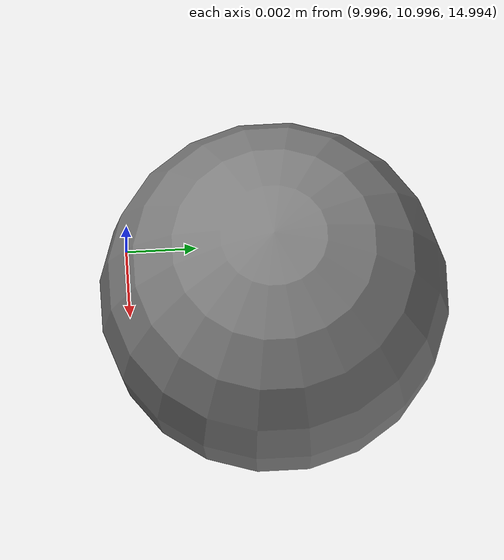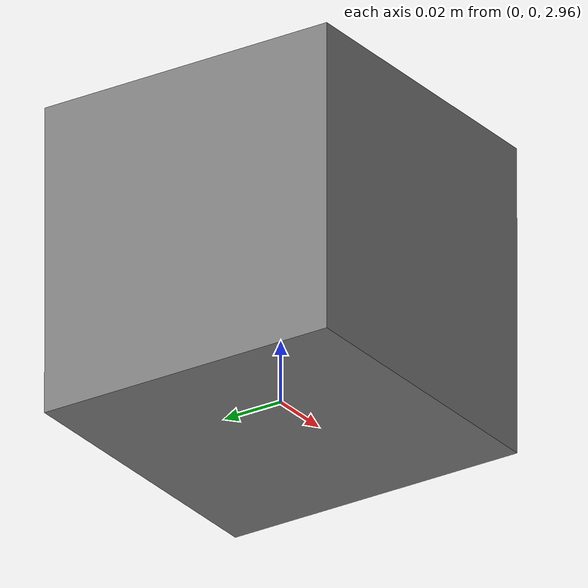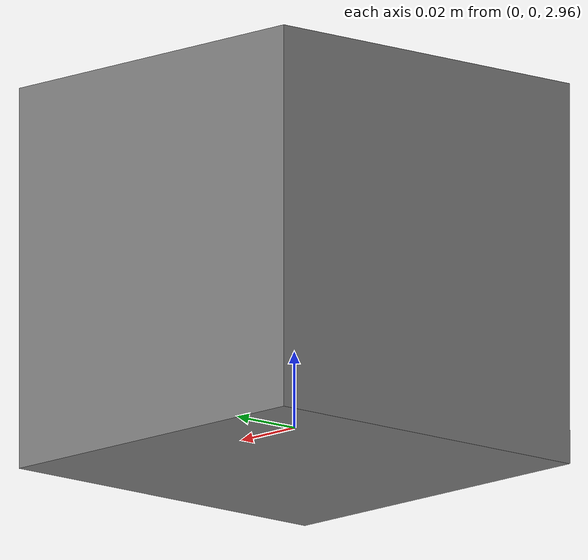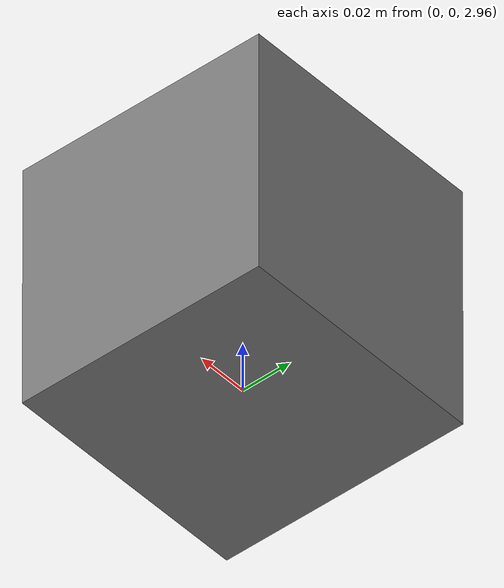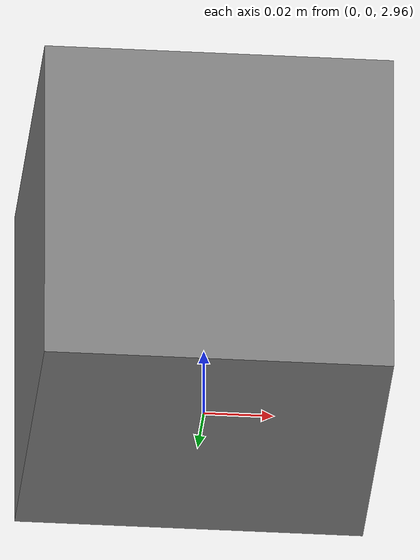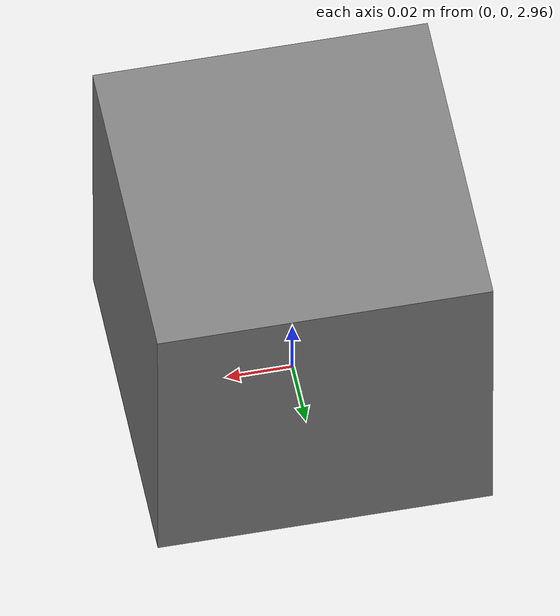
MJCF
<mujoco model="non_rendering_sensors">
  <compiler eulerseq="XYZ"/>
  <option gravity="0 0 -9.8000000000000007" wind="0 0 0" magnetic="5.5644999999999998e-06 2.2875799999999999e-05 -4.2388400000000002e-05"/>
  <worldbody>
    <body name="link" pos="0 0 3" euler="0 -0 0">
      <inertial pos="0 0 0" mass="1.0" fullinertia="1 1 1 0 0 0"/>
      <site name="force_torque_sensor"  pos="10 11 12" euler="0 -0 45"/>
      <geom name="box"  type="box" size="0.05 0.05 0.05" pos="0 0 0" euler="0 -0 0"/>
      <freejoint name="unnamed_joint_0"/>
    </body>
  </worldbody>
  <sensor>
    <force name="force_force_torque_sensor" site="force_torque_sensor"/>
    <torque site="force_torque_sensor" noise="0.0005"/>
  </sensor>
</mujoco>
